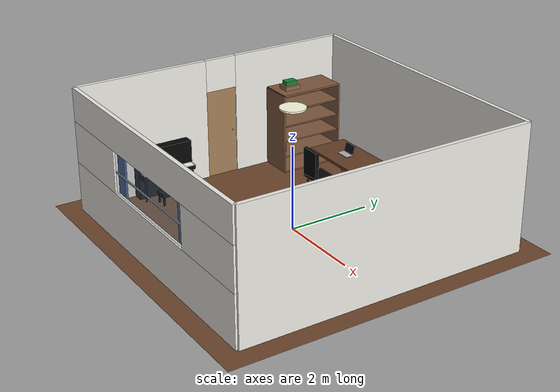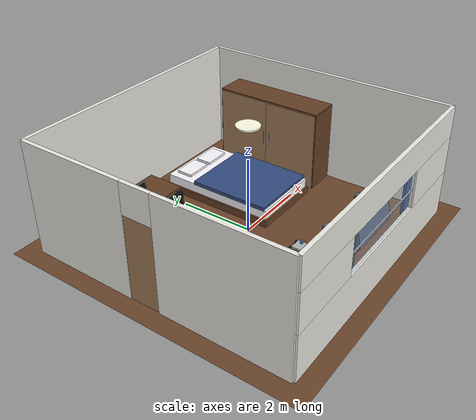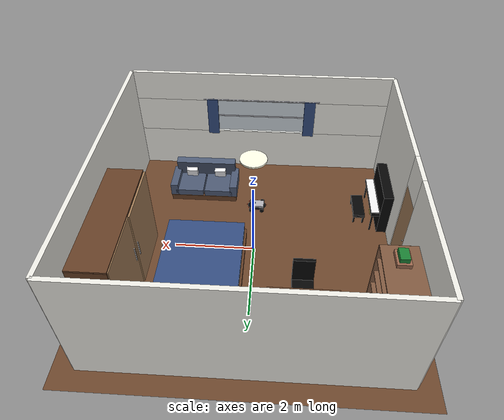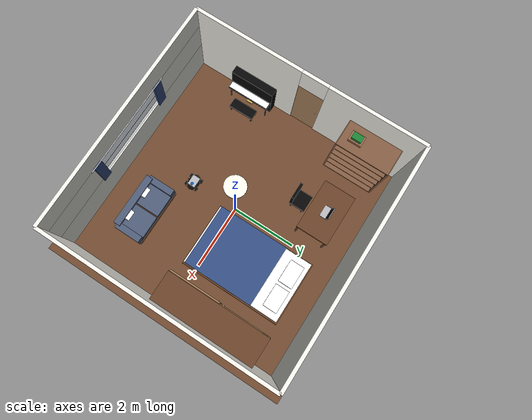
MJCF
<mujoco model="modern_bedroom_pro_car">
  <compiler angle="degree" coordinate="local" inertiafromgeom="true" autolimits="true"/>
  <option timestep="0.002" gravity="0 0 -9.81"/>

  <asset>
    <texture name="wood_floor_tex" type="2d" builtin="checker" rgb1=".45 .3 .2" rgb2=".4 .25 .15" width="512" height="512"/>
    <texture name="wallpaper_tex" type="2d" builtin="checker" rgb1="0.95 0.95 0.92" rgb2="0.92 0.91 0.88" width="512" height="512"/>
    <material name="floor_wood_mat" texture="wood_floor_tex" texrepeat="2 8" texuniform="true" reflectance="0.2" shininess="0.5"/>
    <material name="wall_mat" texture="wallpaper_tex" texrepeat="4 4" texuniform="true" rgba="1 1 1 1" reflectance="0.01"/>
    <material name="wood_mat" rgba="0.4 0.25 0.15 1" specular="0.2" shininess="0.3"/>
    <material name="shelf_wood" rgba="0.5 0.35 0.25 1"/>
    <material name="door_wood_light" rgba="0.65 0.5 0.35 1"/>
    <material name="fabric_dark" rgba="0.2 0.25 1 1"/>
    <material name="fabric_sofa" rgba="0.3 0.35 0.45 1"/>
    <material name="bedding_white" rgba="0.98 0.98 1 1"/>
    <material name="quilt_blue" rgba="0.2 0.3 0.5 1"/>
    <material name="laptop_silver" rgba="0.7 0.7 0.72 1" shininess="0.9"/>
    <material name="screen_black" rgba="0.05 0.05 0.05 1" shininess="1" reflectance="0.8"/>
    <material name="lamp_glow" rgba="1 1 0.9 1" emission="1"/>
    <material name="pot_clay" rgba="0.6 0.4 0.3 1"/>
    <material name="plant_green" rgba="0.1 0.5 0.2 1"/>
    <material name="piano_black" rgba="0.02 0.02 0.02 1" specular="1" shininess="1" reflectance="0.5"/>
    <material name="piano_keys" rgba="0.95 0.95 0.95 1"/>
    <material name="handle_silver" rgba="0.8 0.8 0.83 1" specular="1" shininess="1"/>
    <material name="window_glass" rgba="0.7 0.8 0.9 0.3" shininess="1" reflectance="0.5"/>
    <material name="book_blue" rgba="0.1 0.2 0.4 1"/>
    <material name="book_red" rgba="0.5 0.1 0.1 1"/>
    <material name="book_brown" rgba="0.3 0.2 0.1 1"/>
    <material name="book_grey" rgba="0.7 0.7 0.7 1"/>
    <material name="sensor_blue" rgba="0 0.4 0.8 1" emission="0.5"/>
    <material name="laser_red" rgba="1 0 0 0.8" emission="1"/>
    <material name="car_accent" rgba="0.2 0.6 1 1" emission="0.3"/>
  </asset>

  <worldbody>
    <light directional="true" pos="0 0 5" dir="0 0 -1" diffuse="0.2 0.2 0.2"/>
    <light directional="true" pos="0 -5 2" dir="0 1 -0.5" diffuse="0.3 0.3 0.25" specular="0.1 0.1 0.1"/>

    <body name="ceiling_lamp" pos="0 0 2.9">
      <geom name="ceiling_lamp_geom" type="cylinder" size="0.3 0.02" material="lamp_glow"/>
      <light pos="0 0 -0.1" dir="0 0 -1" diffuse="0.5 0.5 0.4" cutoff="60"/>
    </body>

    <geom name="floor" pos="0 0 0" size="4 4 0.1" type="plane" material="floor_wood_mat"/>

    <body name="room_walls">
      <geom name="wall_back" type="box" size="3.5 0.05 1.5" pos="0 3.5 1.5" material="wall_mat"/>
      <geom name="wall_right" type="box" size="0.05 3.5 1.5" pos="3.5 0 1.5" material="wall_mat"/>
      <geom name="wall_front_bottom" type="box" size="3.5 0.05 0.6" pos="0 -3.5 0.6" material="wall_mat"/>
      <geom name="wall_front_top" type="box" size="3.5 0.05 0.4" pos="0 -3.5 2.6" material="wall_mat"/>
      <geom name="wall_front_left_side" type="box" size="1.0 0.05 0.5" pos="-2.5 -3.5 1.7" material="wall_mat"/>
      <geom name="wall_front_right_side" type="box" size="1.0 0.05 0.5" pos="2.5 -3.5 1.7" material="wall_mat"/>
      <geom name="wall_left_front_segment" type="box" size="0.05 1.65 1.5" pos="-3.5 -1.85 1.5" material="wall_mat"/>
      <geom name="wall_left_back_segment" type="box" size="0.05 1.45 1.5" pos="-3.5 2.05 1.5" material="wall_mat"/>
      <geom name="wall_left_door_header" type="box" size="0.05 0.4 0.4" pos="-3.5 0.2 2.6" material="wall_mat"/>
      <geom name="sofa_window_pane" type="box" size="1.5 0.01 0.5" pos="0 -3.5 1.7" material="window_glass"/>
      <geom name="window_frame" type="box" size="1.5 0.015 0.015" pos="0 -3.5 1.7" material="handle_silver"/>
      <geom name="curtain_rod" type="cylinder" size="0.015 1.6" pos="0 -3.42 2.25" euler="0 90 0" material="handle_silver"/>
      <geom name="curtain_left" type="box" size="0.15 0.03 0.55" pos="-1.35 -3.42 1.7" material="quilt_blue"/>
      <geom name="curtain_right" type="box" size="0.15 0.03 0.55" pos="1.35 -3.42 1.7" material="quilt_blue"/>
    </body>

    <body name="entrance_door" pos="-3.5 0.2 0">
      <joint name="door_hinge" type="hinge" axis="0 0 1" range="0 90" limited="true" pos="0 -0.4 0"/>
      <geom name="door_panel" type="box" size="0.03 0.4 1.1" pos="0 0 1.1" material="door_wood_light"/>
      <geom name="door_knob" type="sphere" size="0.02" pos="0.04 0.3 1.1" rgba="0.7 0.7 0.7 1"/>
    </body>

    <body name="piano" pos="-3.35 -1.5 0">
      <geom name="piano_body" type="box" size="0.15 0.7 0.6" pos="0 0 0.6" material="piano_black"/>
      <geom name="piano_keyboard_deck" type="box" size="0.12 0.68 0.05" pos="0.25 0 0.6" material="piano_black"/>
      <geom name="piano_keys_visual" type="box" size="0.1 0.66 0.01" pos="0.27 0 0.65" material="piano_keys"/>
      <geom name="piano_leg_l" type="cylinder" size="0.02 0.3" pos="0.32 0.62 0.3" material="piano_black"/>
      <geom name="piano_leg_r" type="cylinder" size="0.02 0.3" pos="0.32 -0.62 0.3" material="piano_black"/>
      <geom name="pedals" type="box" size="0.05 0.1 0.02" pos="0.2 0 0.05" rgba="0.8 0.7 0.3 1"/>
      <body name="piano_bench" pos="0.6 0 -0.2">
        <geom name="bench_top" type="box" size="0.15 0.4 0.03" pos="0 0 0.45" material="piano_black"/>
        <geom name="bench_frame" type="box" size="0.15 0.4 0.02" pos="0 0 0.42" material="piano_black"/>
        <geom name="bench_leg_fl" type="box" size="0.02 0.02 0.2" pos="0.12 0.36 0.2" material="piano_black"/>
        <geom name="bench_leg_fr" type="box" size="0.02 0.02 0.2" pos="0.12 -0.36 0.2" material="piano_black"/>
        <geom name="bench_leg_bl" type="box" size="0.02 0.02 0.2" pos="-0.12 0.36 0.2" material="piano_black"/>
        <geom name="bench_leg_br" type="box" size="0.02 0.02 0.2" pos="-0.12 -0.36 0.2" material="piano_black"/>
      </body>
    </body>

    <body name="chair" pos="-1.2 1.5 0" euler="0 0 180">
      <geom name="c_seat" type="box" size="0.25 0.25 0.04" pos="0 0 0.48" material="piano_black"/>
      <geom name="c_back" type="box" size="0.25 0.04 0.35" pos="0 0.21 0.83" material="piano_black"/>
      <geom name="c_leg_fr" type="cylinder" size="0.02 0.24" pos="0.18 0.18 0.24" material="piano_black"/>
      <geom name="c_leg_fl" type="cylinder" size="0.02 0.24" pos="-0.18 0.18 0.24" material="piano_black"/>
      <geom name="c_leg_br" type="cylinder" size="0.02 0.24" pos="0.18 -0.18 0.24" material="piano_black"/>
      <geom name="c_leg_bl" type="cylinder" size="0.02 0.24" pos="-0.18 -0.18 0.24" material="piano_black"/>
    </body>

    <body name="wardrobe" pos="3.0 1.2 1.1">
      <geom name="wardrobe_shell" type="box" size="0.4 1.5 1.1" material="wood_mat"/>
      <geom name="wardrobe_top_frame" type="box" size="0.42 1.52 0.02" pos="0.01 0 1.1" material="wood_mat"/>
      <geom name="wardrobe_side_l" type="box" size="0.42 0.02 1.1" pos="0.01 1.5 0" material="wood_mat"/>
      <geom name="wardrobe_side_r" type="box" size="0.42 0.02 1.1" pos="0.01 -1.5 0" material="wood_mat"/>
      <body name="wardrobe_door_l" pos="-0.41 0.75 0">
        <joint name="slide_door_l" type="slide" axis="0 1 0" range="-1.45 0" limited="true" damping="20"/>
        <geom name="door_l_panel" type="box" size="0.02 0.75 1.08" material="door_wood_light"/>
        <geom name="door_l_handle" type="box" size="0.01 0.01 0.2" pos="-0.03 -0.65 0" material="handle_silver"/>
      </body>
      <body name="wardrobe_door_r" pos="-0.44 -0.75 0">
        <joint name="slide_door_r" type="slide" axis="0 1 0" range="0 1.45" limited="true" damping="20"/>
        <geom name="door_r_panel" type="box" size="0.02 0.75 1.08" material="door_wood_light"/>
        <geom name="door_r_handle" type="box" size="0.01 0.01 0.2" pos="-0.03 0.65 0" material="handle_silver"/>
      </body>
    </body>

    <body name="bookshelf" pos="-3.05 2.3 1.0" euler="0 0 90">
      <geom name="shelf_back" type="box" size="0.8 0.02 1.0" pos="0 0.38 0" material="shelf_wood"/>
      <geom name="shelf_side_l" type="box" size="0.02 0.4 1.0" pos="-0.8 0 0" material="shelf_wood"/>
      <geom name="shelf_side_r" type="box" size="0.02 0.4 1.0" pos="0.8 0 0" material="shelf_wood"/>
      <geom name="shelf_top" type="box" size="0.8 0.4 0.02" pos="0 0 1.0" material="shelf_wood"/>
      <geom name="shelf_bottom" type="box" size="0.8 0.4 0.02" pos="0 0 -1.0" material="shelf_wood"/>
      <geom name="l1" type="box" size="0.78 0.38 0.015" pos="0 0 -0.6" material="shelf_wood"/>
      <geom name="l2" type="box" size="0.78 0.38 0.015" pos="0 0 -0.2" material="shelf_wood"/>
      <geom name="l3" type="box" size="0.78 0.38 0.015" pos="0 0 0.2" material="shelf_wood"/>
      <geom name="l4" type="box" size="0.78 0.38 0.015" pos="0 0 0.6" material="shelf_wood"/>
      <geom type="box" size="0.02 0.15 0.18" pos="-0.7 0 -0.4" material="book_blue"/>
      <geom type="box" size="0.03 0.15 0.18" pos="-0.64 0 -0.4" material="book_red"/>
      <geom type="box" size="0.03 0.15 0.18" pos="-0.7 0 0" material="book_grey"/>
      <geom name="pot_1" type="box" size="0.2 0.15 0.05" pos="-0.4 0 1.07" material="pot_clay"/>
      <geom name="plant_1" type="box" size="0.15 0.1 0.08" pos="-0.4 0 1.15" material="plant_green"/>
    </body>

    <body name="desk_setup" pos="-1.2 2.3 0.8">
      <geom name="desk_top" type="box" size="0.8 0.5 0.03" material="wood_mat"/>
      <geom name="d_leg_fl" type="cylinder" size="0.03 0.4" pos="-0.75 0.45 -0.4" material="wood_mat"/>
      <geom name="d_leg_fr" type="cylinder" size="0.03 0.4" pos="0.75 0.45 -0.4" material="wood_mat"/>
      <geom name="d_leg_bl" type="cylinder" size="0.03 0.4" pos="-0.75 -0.45 -0.4" material="wood_mat"/>
      <geom name="d_leg_br" type="cylinder" size="0.03 0.4" pos="0.75 -0.45 -0.4" material="wood_mat"/>
      <body name="laptop" pos="0 0 0.035">
        <geom name="laptop_base" type="box" size="0.18 0.12 0.01" material="laptop_silver"/>
        <geom name="laptop_screen" type="box" size="0.18 0.01 0.12" pos="0 0.11 0.125" euler="-15 0 0" material="laptop_silver"/>
        <geom name="screen_display" type="box" size="0.17 0.005 0.11" pos="0 0.104 0.125" euler="-15 0 0" material="screen_black"/>
      </body>
    </body>

    <body name="bed" pos="1.2 1.2 0.2">
      <geom name="bed_frame" type="box" size="1.0 1.6 0.1" material="wood_mat"/>
      <geom name="mattress" type="box" size="0.95 1.55 0.15" pos="0 0 0.2" material="bedding_white"/>
      <geom name="pillow_l" type="box" size="0.35 0.22 0.06" pos="-0.4 1.2 0.36" material="bedding_white"/>
      <geom name="pillow_r" type="box" size="0.35 0.22 0.06" pos="0.4 1.2 0.36" material="bedding_white"/>
      <geom name="quilt" type="box" size="0.96 1.1 0.05" pos="0 -0.4 0.38" material="quilt_blue"/>
    </body>

    <body name="sofa" pos="1.5 -2.2 0">
      <geom name="sofa_frame" type="box" size="0.9 0.45 0.08" pos="0 0 0.08" material="wood_mat"/>
      <geom name="cushion_l" type="box" size="0.38 0.42 0.12" pos="-0.4 0.02 0.22" material="fabric_sofa"/>
      <geom name="cushion_r" type="box" size="0.38 0.42 0.12" pos="0.4 0.02 0.22" material="fabric_sofa"/>
      <geom name="armrest_l" type="box" size="0.1 0.42 0.18" pos="-0.82 0.02 0.32" material="fabric_sofa"/>
      <geom name="armrest_r" type="box" size="0.1 0.42 0.18" pos="0.82 0.02 0.32" material="fabric_sofa"/>
      <geom name="sofa_backrest" type="box" size="0.82 0.1 0.35" pos="0 -0.38 0.48" euler="-12 0 0" material="fabric_sofa"/>
      <geom name="pillow_left" type="box" size="0.15 0.08 0.15" pos="-0.4 -0.25 0.45" euler="-15 0 0" material="bedding_white"/>
      <geom name="pillow_right" type="box" size="0.15 0.08 0.15" pos="0.4 -0.25 0.45" euler="-15 0 0" material="bedding_white"/>
    </body>

    <body name="smart_car" pos="0 -1.5 0.12">
      <freejoint name="car_joint"/>

      <geom name="car_chassis" type="ellipsoid" size="0.25 0.18 0.04" material="piano_black"/>
      <geom name="car_shell" type="box" size="0.16 0.12 0.03" pos="-0.02 0 0.04" material="laptop_silver"/>

      <body name="lidar_tower" pos="0.08 0 0.07">
        <geom type="cylinder" size="0.045 0.015" material="piano_black"/>
        <geom type="cylinder" size="0.04 0.01" pos="0 0 0.015" material="sensor_blue"/>
      </body>

      <site name="s_front" pos="0.26 0 0.02" size="0.01" material="laser_red"/>
      <site name="s_front_l" pos="0.22 0.12 0.02" euler="0 0 30" size="0.01" material="laser_red"/>
      <site name="s_front_r" pos="0.22 -0.12 0.02" euler="0 0 -30" size="0.01" material="laser_red"/>
      <site name="s_left" pos="0 0.19 0.02" euler="0 0 90" size="0.01" material="laser_red"/>
      <site name="s_right" pos="0 -0.19 0.02" euler="0 0 -90" size="0.01" material="laser_red"/>
      <site name="s_rear" pos="-0.26 0 0.02" euler="0 0 180" size="0.01" material="laser_red"/>

      <body name="wheel_fl" pos="0.14 0.18 -0.02">
        <joint name="joint_fl" type="hinge" axis="0 1 0"/>
        <geom type="cylinder" size="0.06 0.025" euler="90 0 0" material="piano_black" friction="1.0"/>
      </body>
      <body name="wheel_fr" pos="0.14 -0.18 -0.02">
        <joint name="joint_fr" type="hinge" axis="0 1 0"/>
        <geom type="cylinder" size="0.06 0.025" euler="90 0 0" material="piano_black" friction="1.0"/>
      </body>
      <body name="wheel_bl" pos="-0.14 0.18 -0.02">
        <joint name="joint_bl" type="hinge" axis="0 1 0"/>
        <geom type="cylinder" size="0.06 0.025" euler="90 0 0" material="piano_black" friction="1.0"/>
      </body>
      <body name="wheel_br" pos="-0.14 -0.18 -0.02">
        <joint name="joint_br" type="hinge" axis="0 1 0"/>
        <geom type="cylinder" size="0.06 0.025" euler="90 0 0" material="piano_black" friction="1.0"/>
      </body>
    </body>
  </worldbody>

  <sensor>
    <rangefinder name="dist_front" site="s_front"/>
    <rangefinder name="dist_fl" site="s_front_l"/>
    <rangefinder name="dist_fr" site="s_front_r"/>
    <rangefinder name="dist_left" site="s_left"/>
    <rangefinder name="dist_right" site="s_right"/>
    <rangefinder name="dist_rear" site="s_rear"/>
  </sensor>

  <actuator>
    <motor name="m_fl" joint="joint_fl" gear="60"/>
    <motor name="m_fr" joint="joint_fr" gear="60"/>
    <motor name="m_bl" joint="joint_bl" gear="60"/>
    <motor name="m_br" joint="joint_br" gear="60"/>
  </actuator>
</mujoco>
